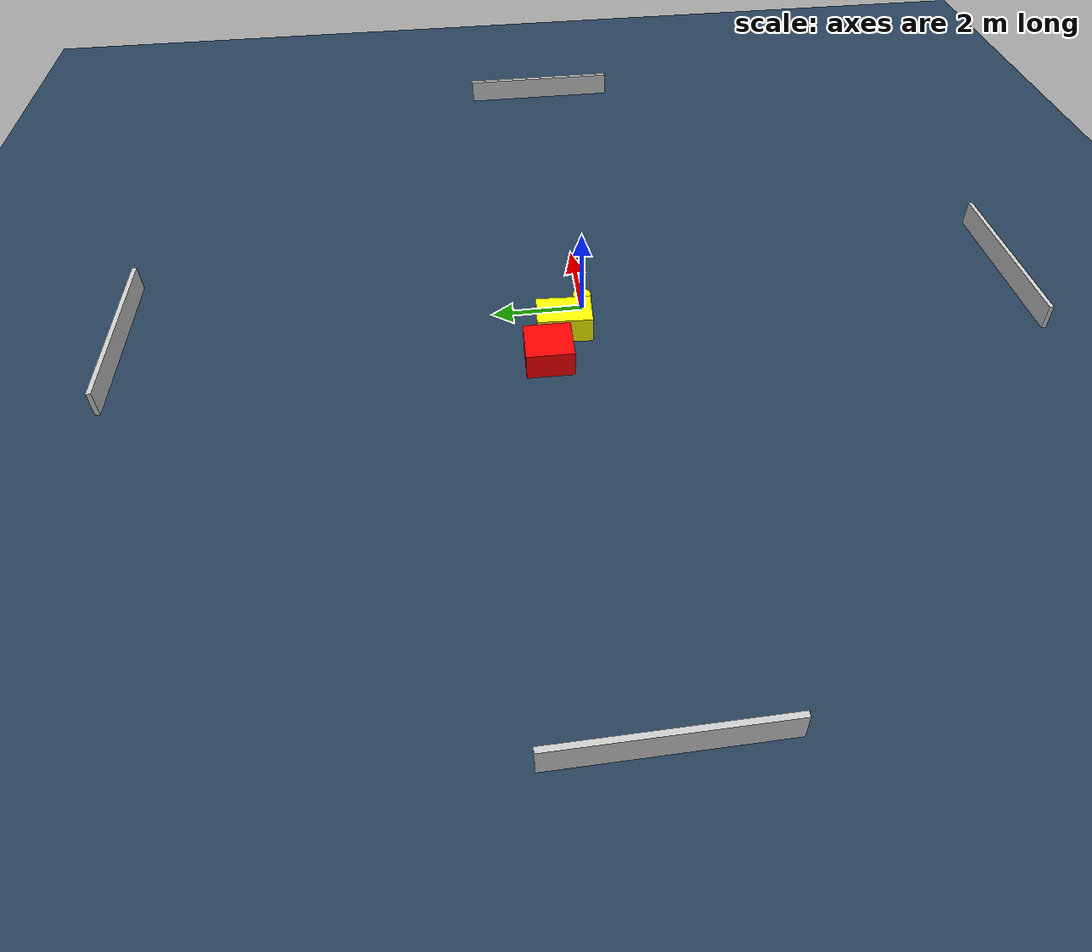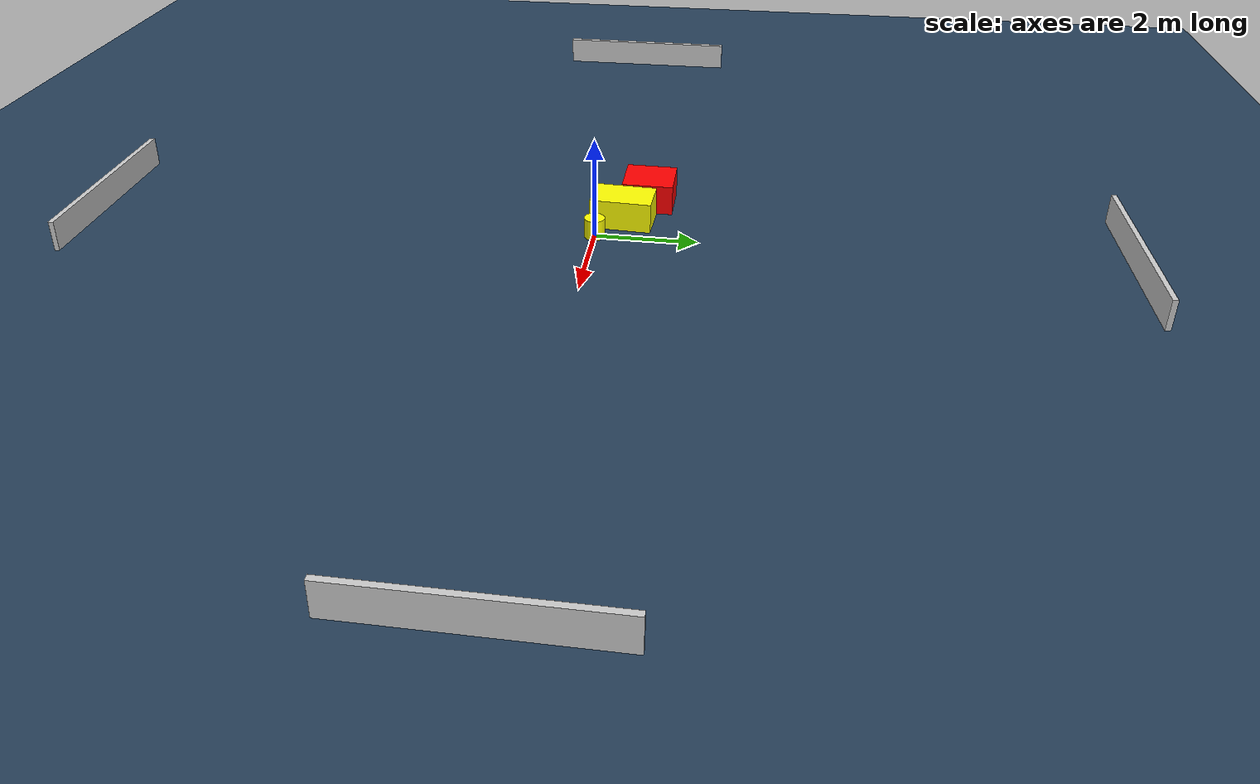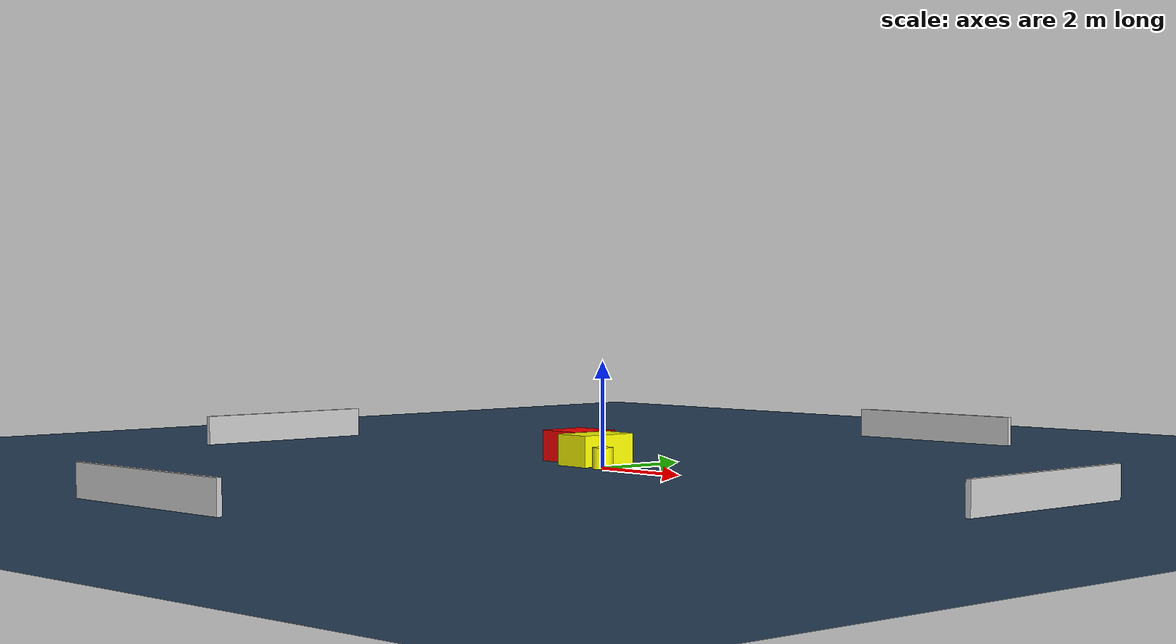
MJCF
<?xml version="1.0" ?>
<mujoco model="generated_environment">
  <option timestep="0.01" integrator="RK4" cone="elliptic"/>
  <default>
    <geom density="1"/>
  </default>
  <asset>
    <texture builtin="gradient" height="3072" name="skybox" rgb1="0.3 0.5 0.7" rgb2="0 0 0" type="skybox" width="512"/>
    <texture builtin="checker" height="300" name="groundplane" rgb1="0.2 0.3 0.4" rgb2="0.1 0.2 0.3" type="2d" width="300"/>
    <material name="groundplane" reflectance="0.2" texrepeat="5 5" texture="groundplane"/>
  </asset>
  <worldbody>
    <light dir="0 0 -1" directional="true" pos="0 0 1.5"/>
    <geom condim="3" friction="0.5 0.005 0.001" material="groundplane" name="floor" pos="0 0 0" size="0 0 0.05" type="plane"/>
    <body name="walls">
      <geom name="wall_1" condim="4" pos="-10.0 0.0 0.3" rgba="0.800000011920929 0.800000011920929 0.800000011920929 1.0" size="0.05 2.0 0.3" type="box"/>
      <geom name="wall_2" condim="4" pos="10.0 0.0 0.3" rgba="0.800000011920929 0.800000011920929 0.800000011920929 1.0" size="0.05 2.0 0.3" type="box"/>
      <geom name="wall_3" condim="4" pos="0.0 -10.0 0.3" rgba="0.800000011920929 0.800000011920929 0.800000011920929 1.0" size="2.0 0.05 0.3" type="box"/>
      <geom name="wall_4" condim="4" pos="0.0 10.0 0.3" rgba="0.800000011920929 0.800000011920929 0.800000011920929 1.0" size="2.0 0.05 0.3" type="box"/>
    </body>
    <body name="robot">
      <joint name="joint_x" type="slide" pos="0 0 0" axis="1 0 0"/>
      <joint name="joint_y" type="slide" pos="0 0 0" axis="0 1 0"/>
      <geom name="robot" type="cylinder" pos="0.0 0.0 0.2" size="0.2 0.2 0.0" mass="5.0" friction="1.0 0.005 0.0001" condim="4" rgba="1.0 1.0 0.0 1.0"/>
    </body>
    <body name="obstacle_1_movable">
      <geom name="obstacle_1_movable" condim="4" pos="-0.6915056807694115 0.476595401135499 0.3" euler="0 0 176.68937453132204" friction="0.0 0.005 0.001" rgba="1.0 1.0 0.0 1.0" size="0.39060809715960537 0.6000643839425264 0.3" type="box" mass="0.1"/>
      <joint type="free"/>
    </body>
    <body name="obstacle_2_static">
      <geom name="obstacle_2_static" condim="4" pos="-1.6099989965418748 0.9093249931825846 0.3" euler="0 0 269.033972488346" friction="0.0 0.005 0.001" rgba="1.0 0.0 0.0 1.0" size="0.5087492657407975 0.48416973645868017 0.3" type="box"/>
    </body>
  </worldbody>
  <actuator>
    <motor name="actuator_x" joint="joint_x" gear="1" ctrlrange="-1 1"/>
    <motor name="actuator_y" joint="joint_y" gear="1" ctrlrange="-1 1"/>
  </actuator>
</mujoco>
